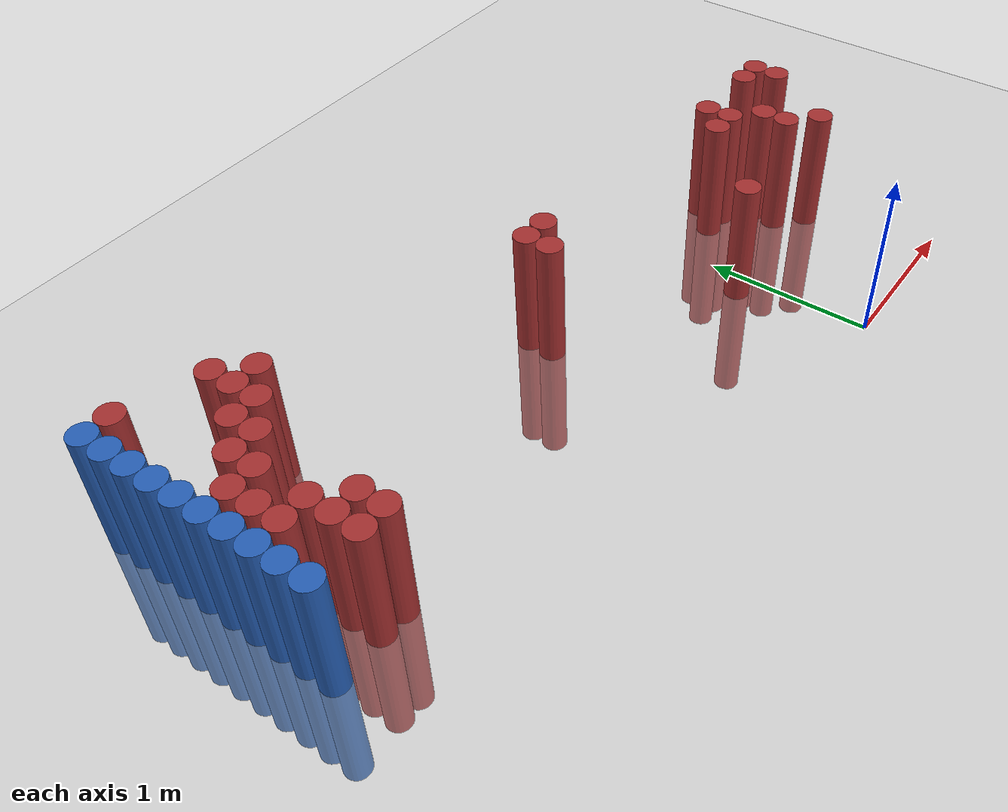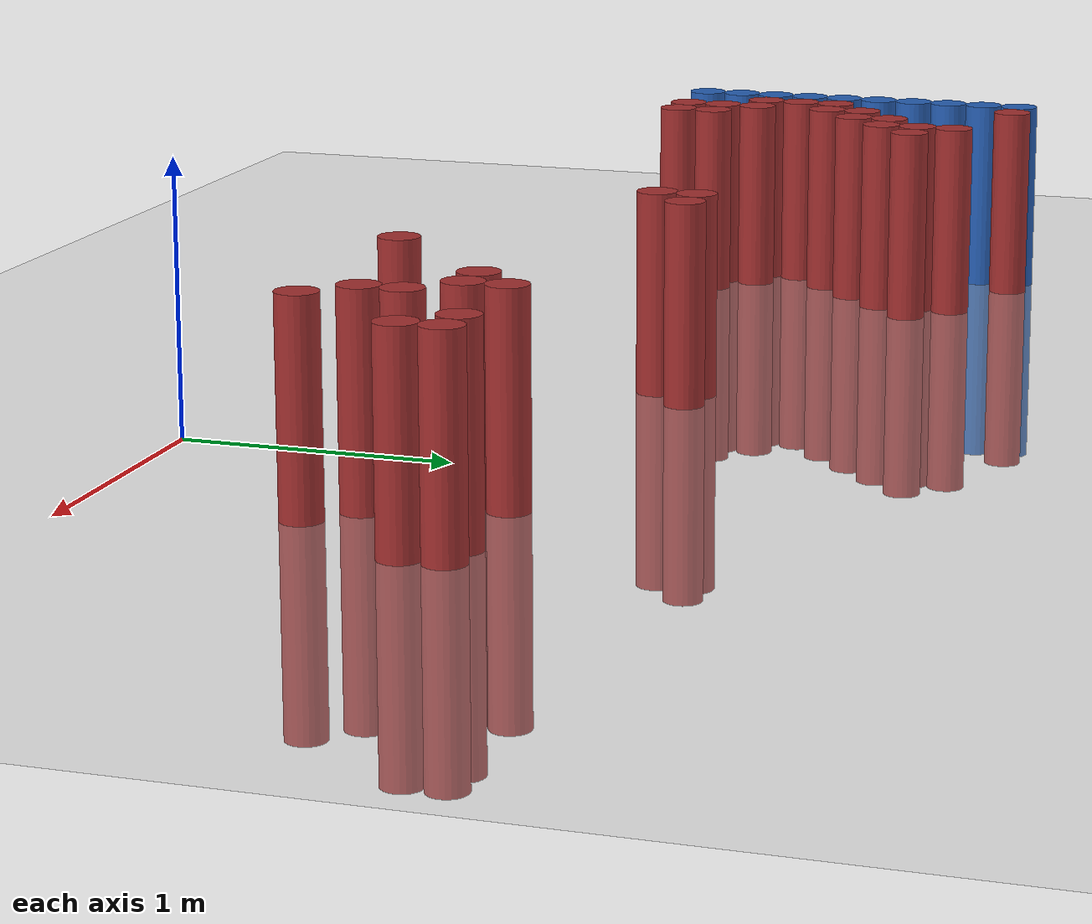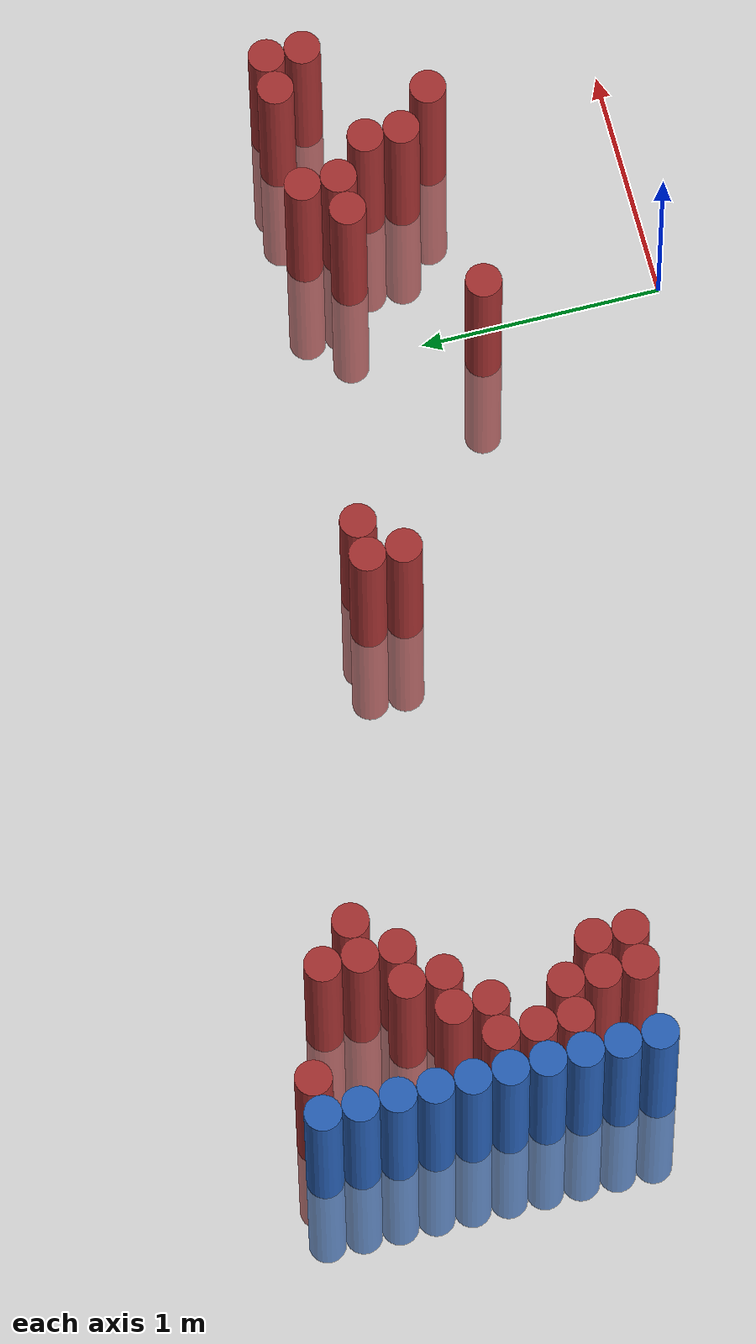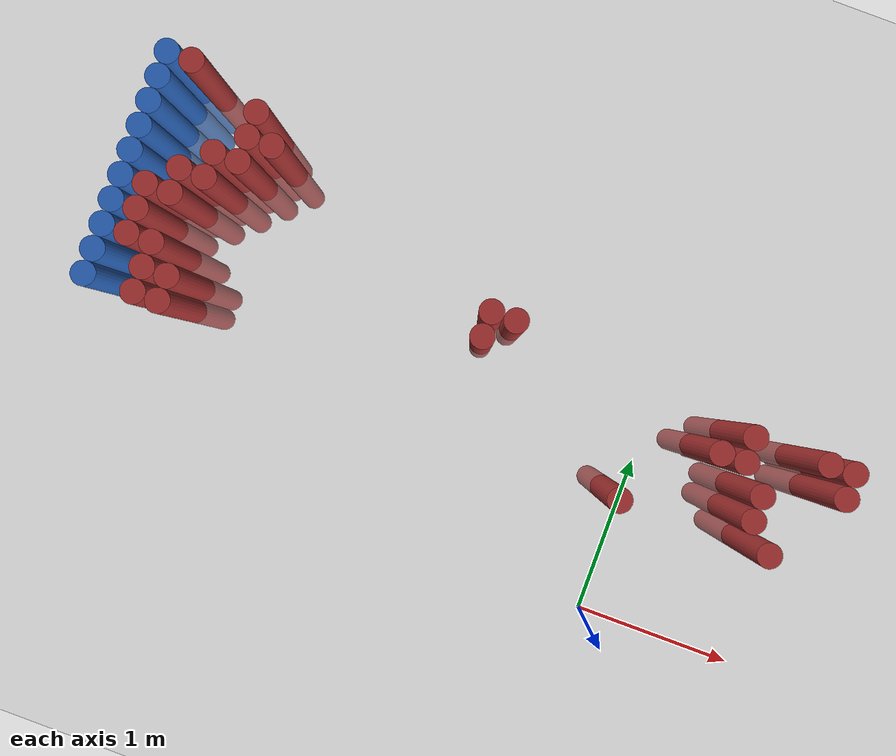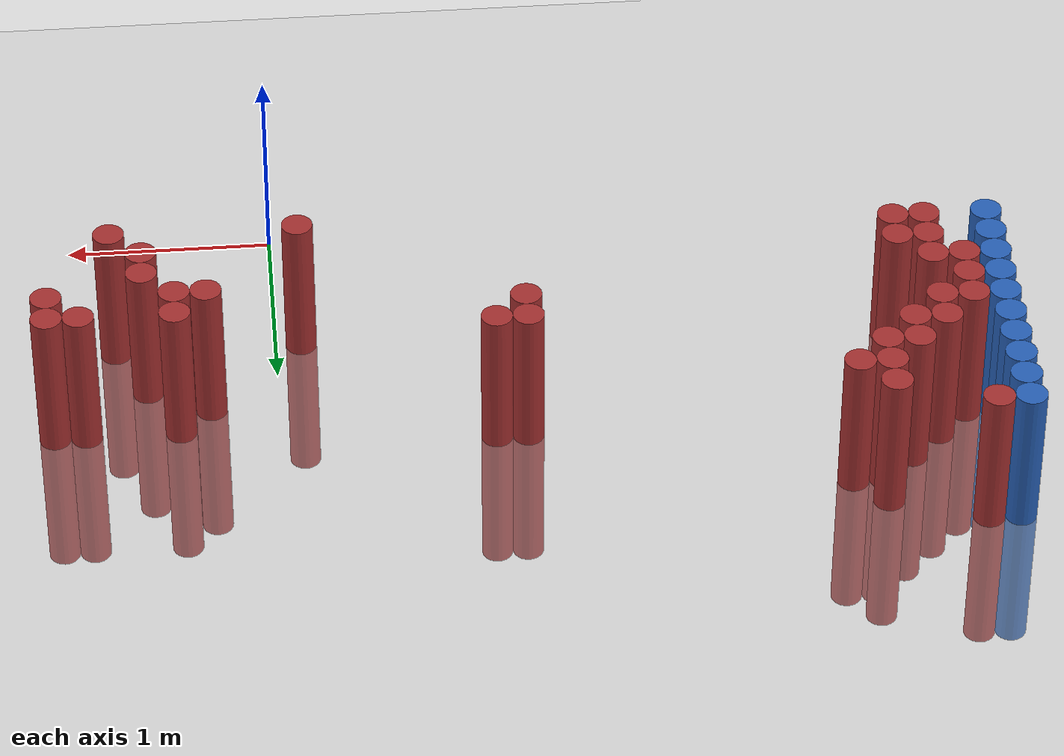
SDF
<sdf version="1.6">
 <world name="default">
  <model name="ground_plane">
   <static>1</static>
   <link name="link">
    <collision name="collision">
     <geometry><plane><normal>0 0 1</normal><size>100 100</size></plane></geometry>
     <surface><friction><ode><mu>100</mu><mu2>50</mu2></ode></friction></surface>
    </collision>
    <visual name="visual">
     <cast_shadows>0</cast_shadows>
     <geometry><plane><normal>0 0 1</normal><size>100 100</size></plane></geometry>
     <material>
      <script><uri>file://media/materials/scripts/gazebo.material</uri><name>Gazebo/Grey</name></script>
     </material>
    </visual>
   </link>
  </model>
  <model name="unit_cylinder_127">
   <static>1</static>
   <pose>-3.425000 0.925000 0.000000 0.000000 0.000000 0.000000</pose>
   <link name="link">
    <inertial>
     <mass>1</mass>
     <inertia><ixx>0.145833</ixx><ixy>0</ixy><ixz>0</ixz><iyy>0.145833</iyy><iyz>0</iyz><izz>0.125</izz></inertia>
    </inertial>
    <collision name="collision">
     <geometry><cylinder><radius>0.075000</radius><length>1.5</length></cylinder></geometry>
    </collision>
    <visual name="visual">
     <geometry><cylinder><radius>0.075000</radius><length>1.5</length></cylinder></geometry>
     <material>
      <ambient>0.152000 0.379000 0.720000 1</ambient>
      <diffuse>0.152000 0.379000 0.720000 1</diffuse>
     </material>
     <material>
      <script><name>Gazebo/Grey</name><uri>file://media/materials/scripts/gazebo.material</uri></script>
     </material>
    </visual>
   </link>
  </model>
  <model name="unit_cylinder_129">
   <static>1</static>
   <pose>-3.425000 1.075000 0.000000 0.000000 0.000000 0.000000</pose>
   <link name="link">
    <inertial>
     <mass>1</mass>
     <inertia><ixx>0.145833</ixx><ixy>0</ixy><ixz>0</ixz><iyy>0.145833</iyy><iyz>0</iyz><izz>0.125</izz></inertia>
    </inertial>
    <collision name="collision">
     <geometry><cylinder><radius>0.075000</radius><length>1.5</length></cylinder></geometry>
    </collision>
    <visual name="visual">
     <geometry><cylinder><radius>0.075000</radius><length>1.5</length></cylinder></geometry>
     <material>
      <ambient>0.152000 0.379000 0.720000 1</ambient>
      <diffuse>0.152000 0.379000 0.720000 1</diffuse>
     </material>
     <material>
      <script><name>Gazebo/Grey</name><uri>file://media/materials/scripts/gazebo.material</uri></script>
     </material>
    </visual>
   </link>
  </model>
  <model name="unit_cylinder_131">
   <static>1</static>
   <pose>-3.425000 1.225000 0.000000 0.000000 0.000000 0.000000</pose>
   <link name="link">
    <inertial>
     <mass>1</mass>
     <inertia><ixx>0.145833</ixx><ixy>0</ixy><ixz>0</ixz><iyy>0.145833</iyy><iyz>0</iyz><izz>0.125</izz></inertia>
    </inertial>
    <collision name="collision">
     <geometry><cylinder><radius>0.075000</radius><length>1.5</length></cylinder></geometry>
    </collision>
    <visual name="visual">
     <geometry><cylinder><radius>0.075000</radius><length>1.5</length></cylinder></geometry>
     <material>
      <ambient>0.152000 0.379000 0.720000 1</ambient>
      <diffuse>0.152000 0.379000 0.720000 1</diffuse>
     </material>
     <material>
      <script><name>Gazebo/Grey</name><uri>file://media/materials/scripts/gazebo.material</uri></script>
     </material>
    </visual>
   </link>
  </model>
  <model name="unit_cylinder_133">
   <static>1</static>
   <pose>-3.425000 1.375000 0.000000 0.000000 0.000000 0.000000</pose>
   <link name="link">
    <inertial>
     <mass>1</mass>
     <inertia><ixx>0.145833</ixx><ixy>0</ixy><ixz>0</ixz><iyy>0.145833</iyy><iyz>0</iyz><izz>0.125</izz></inertia>
    </inertial>
    <collision name="collision">
     <geometry><cylinder><radius>0.075000</radius><length>1.5</length></cylinder></geometry>
    </collision>
    <visual name="visual">
     <geometry><cylinder><radius>0.075000</radius><length>1.5</length></cylinder></geometry>
     <material>
      <ambient>0.152000 0.379000 0.720000 1</ambient>
      <diffuse>0.152000 0.379000 0.720000 1</diffuse>
     </material>
     <material>
      <script><name>Gazebo/Grey</name><uri>file://media/materials/scripts/gazebo.material</uri></script>
     </material>
    </visual>
   </link>
  </model>
  <model name="unit_cylinder_135">
   <static>1</static>
   <pose>-3.425000 1.525000 0.000000 0.000000 0.000000 0.000000</pose>
   <link name="link">
    <inertial>
     <mass>1</mass>
     <inertia><ixx>0.145833</ixx><ixy>0</ixy><ixz>0</ixz><iyy>0.145833</iyy><iyz>0</iyz><izz>0.125</izz></inertia>
    </inertial>
    <collision name="collision">
     <geometry><cylinder><radius>0.075000</radius><length>1.5</length></cylinder></geometry>
    </collision>
    <visual name="visual">
     <geometry><cylinder><radius>0.075000</radius><length>1.5</length></cylinder></geometry>
     <material>
      <ambient>0.152000 0.379000 0.720000 1</ambient>
      <diffuse>0.152000 0.379000 0.720000 1</diffuse>
     </material>
     <material>
      <script><name>Gazebo/Grey</name><uri>file://media/materials/scripts/gazebo.material</uri></script>
     </material>
    </visual>
   </link>
  </model>
  <model name="unit_cylinder_137">
   <static>1</static>
   <pose>-3.425000 1.675000 0.000000 0.000000 0.000000 0.000000</pose>
   <link name="link">
    <inertial>
     <mass>1</mass>
     <inertia><ixx>0.145833</ixx><ixy>0</ixy><ixz>0</ixz><iyy>0.145833</iyy><iyz>0</iyz><izz>0.125</izz></inertia>
    </inertial>
    <collision name="collision">
     <geometry><cylinder><radius>0.075000</radius><length>1.5</length></cylinder></geometry>
    </collision>
    <visual name="visual">
     <geometry><cylinder><radius>0.075000</radius><length>1.5</length></cylinder></geometry>
     <material>
      <ambient>0.152000 0.379000 0.720000 1</ambient>
      <diffuse>0.152000 0.379000 0.720000 1</diffuse>
     </material>
     <material>
      <script><name>Gazebo/Grey</name><uri>file://media/materials/scripts/gazebo.material</uri></script>
     </material>
    </visual>
   </link>
  </model>
  <model name="unit_cylinder_139">
   <static>1</static>
   <pose>-3.425000 1.825000 0.000000 0.000000 0.000000 0.000000</pose>
   <link name="link">
    <inertial>
     <mass>1</mass>
     <inertia><ixx>0.145833</ixx><ixy>0</ixy><ixz>0</ixz><iyy>0.145833</iyy><iyz>0</iyz><izz>0.125</izz></inertia>
    </inertial>
    <collision name="collision">
     <geometry><cylinder><radius>0.075000</radius><length>1.5</length></cylinder></geometry>
    </collision>
    <visual name="visual">
     <geometry><cylinder><radius>0.075000</radius><length>1.5</length></cylinder></geometry>
     <material>
      <ambient>0.152000 0.379000 0.720000 1</ambient>
      <diffuse>0.152000 0.379000 0.720000 1</diffuse>
     </material>
     <material>
      <script><name>Gazebo/Grey</name><uri>file://media/materials/scripts/gazebo.material</uri></script>
     </material>
    </visual>
   </link>
  </model>
  <model name="unit_cylinder_141">
   <static>1</static>
   <pose>-3.425000 1.975000 0.000000 0.000000 0.000000 0.000000</pose>
   <link name="link">
    <inertial>
     <mass>1</mass>
     <inertia><ixx>0.145833</ixx><ixy>0</ixy><ixz>0</ixz><iyy>0.145833</iyy><iyz>0</iyz><izz>0.125</izz></inertia>
    </inertial>
    <collision name="collision">
     <geometry><cylinder><radius>0.075000</radius><length>1.5</length></cylinder></geometry>
    </collision>
    <visual name="visual">
     <geometry><cylinder><radius>0.075000</radius><length>1.5</length></cylinder></geometry>
     <material>
      <ambient>0.152000 0.379000 0.720000 1</ambient>
      <diffuse>0.152000 0.379000 0.720000 1</diffuse>
     </material>
     <material>
      <script><name>Gazebo/Grey</name><uri>file://media/materials/scripts/gazebo.material</uri></script>
     </material>
    </visual>
   </link>
  </model>
  <model name="unit_cylinder_143">
   <static>1</static>
   <pose>-3.425000 2.125000 0.000000 0.000000 0.000000 0.000000</pose>
   <link name="link">
    <inertial>
     <mass>1</mass>
     <inertia><ixx>0.145833</ixx><ixy>0</ixy><ixz>0</ixz><iyy>0.145833</iyy><iyz>0</iyz><izz>0.125</izz></inertia>
    </inertial>
    <collision name="collision">
     <geometry><cylinder><radius>0.075000</radius><length>1.5</length></cylinder></geometry>
    </collision>
    <visual name="visual">
     <geometry><cylinder><radius>0.075000</radius><length>1.5</length></cylinder></geometry>
     <material>
      <ambient>0.152000 0.379000 0.720000 1</ambient>
      <diffuse>0.152000 0.379000 0.720000 1</diffuse>
     </material>
     <material>
      <script><name>Gazebo/Grey</name><uri>file://media/materials/scripts/gazebo.material</uri></script>
     </material>
    </visual>
   </link>
  </model>
  <model name="unit_cylinder_145">
   <static>1</static>
   <pose>-3.425000 2.275000 0.000000 0.000000 0.000000 0.000000</pose>
   <link name="link">
    <inertial>
     <mass>1</mass>
     <inertia><ixx>0.145833</ixx><ixy>0</ixy><ixz>0</ixz><iyy>0.145833</iyy><iyz>0</iyz><izz>0.125</izz></inertia>
    </inertial>
    <collision name="collision">
     <geometry><cylinder><radius>0.075000</radius><length>1.5</length></cylinder></geometry>
    </collision>
    <visual name="visual">
     <geometry><cylinder><radius>0.075000</radius><length>1.5</length></cylinder></geometry>
     <material>
      <ambient>0.152000 0.379000 0.720000 1</ambient>
      <diffuse>0.152000 0.379000 0.720000 1</diffuse>
     </material>
     <material>
      <script><name>Gazebo/Grey</name><uri>file://media/materials/scripts/gazebo.material</uri></script>
     </material>
    </visual>
   </link>
  </model>
  <model name="unit_cylinder_227">
   <static>1</static>
   <pose>-3.425000 0.925000 0.000000 0.000000 0.000000 0.000000</pose>
   <link name="link">
    <inertial>
     <mass>1</mass>
     <inertia><ixx>0.145833</ixx><ixy>0</ixy><ixz>0</ixz><iyy>0.145833</iyy><iyz>0</iyz><izz>0.125</izz></inertia>
    </inertial>
    <collision name="collision">
     <geometry><cylinder><radius>0.075000</radius><length>1.5</length></cylinder></geometry>
    </collision>
    <visual name="visual">
     <geometry><cylinder><radius>0.075000</radius><length>1.5</length></cylinder></geometry>
     <material>
      <ambient>0.152000 0.379000 0.720000 1</ambient>
      <diffuse>0.152000 0.379000 0.720000 1</diffuse>
     </material>
     <material>
      <script><name>Gazebo/Grey</name><uri>file://media/materials/scripts/gazebo.material</uri></script>
     </material>
    </visual>
   </link>
  </model>
  <model name="unit_cylinder_228">
   <static>1</static>
   <pose>-3.425000 1.075000 0.000000 0.000000 0.000000 0.000000</pose>
   <link name="link">
    <inertial>
     <mass>1</mass>
     <inertia><ixx>0.145833</ixx><ixy>0</ixy><ixz>0</ixz><iyy>0.145833</iyy><iyz>0</iyz><izz>0.125</izz></inertia>
    </inertial>
    <collision name="collision">
     <geometry><cylinder><radius>0.075000</radius><length>1.5</length></cylinder></geometry>
    </collision>
    <visual name="visual">
     <geometry><cylinder><radius>0.075000</radius><length>1.5</length></cylinder></geometry>
     <material>
      <ambient>0.152000 0.379000 0.720000 1</ambient>
      <diffuse>0.152000 0.379000 0.720000 1</diffuse>
     </material>
     <material>
      <script><name>Gazebo/Grey</name><uri>file://media/materials/scripts/gazebo.material</uri></script>
     </material>
    </visual>
   </link>
  </model>
  <model name="unit_cylinder_229">
   <static>1</static>
   <pose>-3.425000 1.225000 0.000000 0.000000 0.000000 0.000000</pose>
   <link name="link">
    <inertial>
     <mass>1</mass>
     <inertia><ixx>0.145833</ixx><ixy>0</ixy><ixz>0</ixz><iyy>0.145833</iyy><iyz>0</iyz><izz>0.125</izz></inertia>
    </inertial>
    <collision name="collision">
     <geometry><cylinder><radius>0.075000</radius><length>1.5</length></cylinder></geometry>
    </collision>
    <visual name="visual">
     <geometry><cylinder><radius>0.075000</radius><length>1.5</length></cylinder></geometry>
     <material>
      <ambient>0.152000 0.379000 0.720000 1</ambient>
      <diffuse>0.152000 0.379000 0.720000 1</diffuse>
     </material>
     <material>
      <script><name>Gazebo/Grey</name><uri>file://media/materials/scripts/gazebo.material</uri></script>
     </material>
    </visual>
   </link>
  </model>
  <model name="unit_cylinder_230">
   <static>1</static>
   <pose>-3.425000 1.375000 0.000000 0.000000 0.000000 0.000000</pose>
   <link name="link">
    <inertial>
     <mass>1</mass>
     <inertia><ixx>0.145833</ixx><ixy>0</ixy><ixz>0</ixz><iyy>0.145833</iyy><iyz>0</iyz><izz>0.125</izz></inertia>
    </inertial>
    <collision name="collision">
     <geometry><cylinder><radius>0.075000</radius><length>1.5</length></cylinder></geometry>
    </collision>
    <visual name="visual">
     <geometry><cylinder><radius>0.075000</radius><length>1.5</length></cylinder></geometry>
     <material>
      <ambient>0.152000 0.379000 0.720000 1</ambient>
      <diffuse>0.152000 0.379000 0.720000 1</diffuse>
     </material>
     <material>
      <script><name>Gazebo/Grey</name><uri>file://media/materials/scripts/gazebo.material</uri></script>
     </material>
    </visual>
   </link>
  </model>
  <model name="unit_cylinder_231">
   <static>1</static>
   <pose>-3.425000 1.525000 0.000000 0.000000 0.000000 0.000000</pose>
   <link name="link">
    <inertial>
     <mass>1</mass>
     <inertia><ixx>0.145833</ixx><ixy>0</ixy><ixz>0</ixz><iyy>0.145833</iyy><iyz>0</iyz><izz>0.125</izz></inertia>
    </inertial>
    <collision name="collision">
     <geometry><cylinder><radius>0.075000</radius><length>1.5</length></cylinder></geometry>
    </collision>
    <visual name="visual">
     <geometry><cylinder><radius>0.075000</radius><length>1.5</length></cylinder></geometry>
     <material>
      <ambient>0.152000 0.379000 0.720000 1</ambient>
      <diffuse>0.152000 0.379000 0.720000 1</diffuse>
     </material>
     <material>
      <script><name>Gazebo/Grey</name><uri>file://media/materials/scripts/gazebo.material</uri></script>
     </material>
    </visual>
   </link>
  </model>
  <model name="unit_cylinder_232">
   <static>1</static>
   <pose>-3.425000 1.675000 0.000000 0.000000 0.000000 0.000000</pose>
   <link name="link">
    <inertial>
     <mass>1</mass>
     <inertia><ixx>0.145833</ixx><ixy>0</ixy><ixz>0</ixz><iyy>0.145833</iyy><iyz>0</iyz><izz>0.125</izz></inertia>
    </inertial>
    <collision name="collision">
     <geometry><cylinder><radius>0.075000</radius><length>1.5</length></cylinder></geometry>
    </collision>
    <visual name="visual">
     <geometry><cylinder><radius>0.075000</radius><length>1.5</length></cylinder></geometry>
     <material>
      <ambient>0.152000 0.379000 0.720000 1</ambient>
      <diffuse>0.152000 0.379000 0.720000 1</diffuse>
     </material>
     <material>
      <script><name>Gazebo/Grey</name><uri>file://media/materials/scripts/gazebo.material</uri></script>
     </material>
    </visual>
   </link>
  </model>
  <model name="unit_cylinder_233">
   <static>1</static>
   <pose>-3.425000 1.825000 0.000000 0.000000 0.000000 0.000000</pose>
   <link name="link">
    <inertial>
     <mass>1</mass>
     <inertia><ixx>0.145833</ixx><ixy>0</ixy><ixz>0</ixz><iyy>0.145833</iyy><iyz>0</iyz><izz>0.125</izz></inertia>
    </inertial>
    <collision name="collision">
     <geometry><cylinder><radius>0.075000</radius><length>1.5</length></cylinder></geometry>
    </collision>
    <visual name="visual">
     <geometry><cylinder><radius>0.075000</radius><length>1.5</length></cylinder></geometry>
     <material>
      <ambient>0.152000 0.379000 0.720000 1</ambient>
      <diffuse>0.152000 0.379000 0.720000 1</diffuse>
     </material>
     <material>
      <script><name>Gazebo/Grey</name><uri>file://media/materials/scripts/gazebo.material</uri></script>
     </material>
    </visual>
   </link>
  </model>
  <model name="unit_cylinder_234">
   <static>1</static>
   <pose>-3.425000 1.975000 0.000000 0.000000 0.000000 0.000000</pose>
   <link name="link">
    <inertial>
     <mass>1</mass>
     <inertia><ixx>0.145833</ixx><ixy>0</ixy><ixz>0</ixz><iyy>0.145833</iyy><iyz>0</iyz><izz>0.125</izz></inertia>
    </inertial>
    <collision name="collision">
     <geometry><cylinder><radius>0.075000</radius><length>1.5</length></cylinder></geometry>
    </collision>
    <visual name="visual">
     <geometry><cylinder><radius>0.075000</radius><length>1.5</length></cylinder></geometry>
     <material>
      <ambient>0.152000 0.379000 0.720000 1</ambient>
      <diffuse>0.152000 0.379000 0.720000 1</diffuse>
     </material>
     <material>
      <script><name>Gazebo/Grey</name><uri>file://media/materials/scripts/gazebo.material</uri></script>
     </material>
    </visual>
   </link>
  </model>
  <model name="unit_cylinder_235">
   <static>1</static>
   <pose>-3.425000 2.125000 0.000000 0.000000 0.000000 0.000000</pose>
   <link name="link">
    <inertial>
     <mass>1</mass>
     <inertia><ixx>0.145833</ixx><ixy>0</ixy><ixz>0</ixz><iyy>0.145833</iyy><iyz>0</iyz><izz>0.125</izz></inertia>
    </inertial>
    <collision name="collision">
     <geometry><cylinder><radius>0.075000</radius><length>1.5</length></cylinder></geometry>
    </collision>
    <visual name="visual">
     <geometry><cylinder><radius>0.075000</radius><length>1.5</length></cylinder></geometry>
     <material>
      <ambient>0.152000 0.379000 0.720000 1</ambient>
      <diffuse>0.152000 0.379000 0.720000 1</diffuse>
     </material>
     <material>
      <script><name>Gazebo/Grey</name><uri>file://media/materials/scripts/gazebo.material</uri></script>
     </material>
    </visual>
   </link>
  </model>
  <model name="unit_cylinder_236">
   <static>1</static>
   <pose>-3.425000 2.275000 0.000000 0.000000 0.000000 0.000000</pose>
   <link name="link">
    <inertial>
     <mass>1</mass>
     <inertia><ixx>0.145833</ixx><ixy>0</ixy><ixz>0</ixz><iyy>0.145833</iyy><iyz>0</iyz><izz>0.125</izz></inertia>
    </inertial>
    <collision name="collision">
     <geometry><cylinder><radius>0.075000</radius><length>1.5</length></cylinder></geometry>
    </collision>
    <visual name="visual">
     <geometry><cylinder><radius>0.075000</radius><length>1.5</length></cylinder></geometry>
     <material>
      <ambient>0.152000 0.379000 0.720000 1</ambient>
      <diffuse>0.152000 0.379000 0.720000 1</diffuse>
     </material>
     <material>
      <script><name>Gazebo/Grey</name><uri>file://media/materials/scripts/gazebo.material</uri></script>
     </material>
    </visual>
   </link>
  </model>
  <model name="unit_cylinder_273">
   <static>1</static>
   <pose>-3.275000 1.225000 0.000000 0.000000 0.000000 0.000000</pose>
   <link name="link">
    <inertial>
     <mass>1</mass>
     <inertia><ixx>0.145833</ixx><ixy>0</ixy><ixz>0</ixz><iyy>0.145833</iyy><iyz>0</iyz><izz>0.125</izz></inertia>
    </inertial>
    <collision name="collision">
     <geometry><cylinder><radius>0.075000</radius><length>1.5</length></cylinder></geometry>
    </collision>
    <visual name="visual">
     <geometry><cylinder><radius>0.075000</radius><length>1.5</length></cylinder></geometry>
     <material>
      <ambient>0.648000 0.192000 0.192000 1</ambient>
      <diffuse>0.648000 0.192000 0.192000 1</diffuse>
     </material>
     <material>
      <script><name>Gazebo/Grey</name><uri>file://media/materials/scripts/gazebo.material</uri></script>
     </material>
    </visual>
   </link>
  </model>
  <model name="unit_cylinder_274">
   <static>1</static>
   <pose>-3.275000 1.375000 0.000000 0.000000 0.000000 0.000000</pose>
   <link name="link">
    <inertial>
     <mass>1</mass>
     <inertia><ixx>0.145833</ixx><ixy>0</ixy><ixz>0</ixz><iyy>0.145833</iyy><iyz>0</iyz><izz>0.125</izz></inertia>
    </inertial>
    <collision name="collision">
     <geometry><cylinder><radius>0.075000</radius><length>1.5</length></cylinder></geometry>
    </collision>
    <visual name="visual">
     <geometry><cylinder><radius>0.075000</radius><length>1.5</length></cylinder></geometry>
     <material>
      <ambient>0.648000 0.192000 0.192000 1</ambient>
      <diffuse>0.648000 0.192000 0.192000 1</diffuse>
     </material>
     <material>
      <script><name>Gazebo/Grey</name><uri>file://media/materials/scripts/gazebo.material</uri></script>
     </material>
    </visual>
   </link>
  </model>
  <model name="unit_cylinder_275">
   <static>1</static>
   <pose>-3.275000 1.525000 0.000000 0.000000 0.000000 0.000000</pose>
   <link name="link">
    <inertial>
     <mass>1</mass>
     <inertia><ixx>0.145833</ixx><ixy>0</ixy><ixz>0</ixz><iyy>0.145833</iyy><iyz>0</iyz><izz>0.125</izz></inertia>
    </inertial>
    <collision name="collision">
     <geometry><cylinder><radius>0.075000</radius><length>1.5</length></cylinder></geometry>
    </collision>
    <visual name="visual">
     <geometry><cylinder><radius>0.075000</radius><length>1.5</length></cylinder></geometry>
     <material>
      <ambient>0.648000 0.192000 0.192000 1</ambient>
      <diffuse>0.648000 0.192000 0.192000 1</diffuse>
     </material>
     <material>
      <script><name>Gazebo/Grey</name><uri>file://media/materials/scripts/gazebo.material</uri></script>
     </material>
    </visual>
   </link>
  </model>
  <model name="unit_cylinder_276">
   <static>1</static>
   <pose>-3.275000 2.275000 0.000000 0.000000 0.000000 0.000000</pose>
   <link name="link">
    <inertial>
     <mass>1</mass>
     <inertia><ixx>0.145833</ixx><ixy>0</ixy><ixz>0</ixz><iyy>0.145833</iyy><iyz>0</iyz><izz>0.125</izz></inertia>
    </inertial>
    <collision name="collision">
     <geometry><cylinder><radius>0.075000</radius><length>1.5</length></cylinder></geometry>
    </collision>
    <visual name="visual">
     <geometry><cylinder><radius>0.075000</radius><length>1.5</length></cylinder></geometry>
     <material>
      <ambient>0.648000 0.192000 0.192000 1</ambient>
      <diffuse>0.648000 0.192000 0.192000 1</diffuse>
     </material>
     <material>
      <script><name>Gazebo/Grey</name><uri>file://media/materials/scripts/gazebo.material</uri></script>
     </material>
    </visual>
   </link>
  </model>
  <model name="unit_cylinder_289">
   <static>1</static>
   <pose>-3.125000 0.925000 0.000000 0.000000 0.000000 0.000000</pose>
   <link name="link">
    <inertial>
     <mass>1</mass>
     <inertia><ixx>0.145833</ixx><ixy>0</ixy><ixz>0</ixz><iyy>0.145833</iyy><iyz>0</iyz><izz>0.125</izz></inertia>
    </inertial>
    <collision name="collision">
     <geometry><cylinder><radius>0.075000</radius><length>1.5</length></cylinder></geometry>
    </collision>
    <visual name="visual">
     <geometry><cylinder><radius>0.075000</radius><length>1.5</length></cylinder></geometry>
     <material>
      <ambient>0.648000 0.192000 0.192000 1</ambient>
      <diffuse>0.648000 0.192000 0.192000 1</diffuse>
     </material>
     <material>
      <script><name>Gazebo/Grey</name><uri>file://media/materials/scripts/gazebo.material</uri></script>
     </material>
    </visual>
   </link>
  </model>
  <model name="unit_cylinder_290">
   <static>1</static>
   <pose>-3.125000 1.075000 0.000000 0.000000 0.000000 0.000000</pose>
   <link name="link">
    <inertial>
     <mass>1</mass>
     <inertia><ixx>0.145833</ixx><ixy>0</ixy><ixz>0</ixz><iyy>0.145833</iyy><iyz>0</iyz><izz>0.125</izz></inertia>
    </inertial>
    <collision name="collision">
     <geometry><cylinder><radius>0.075000</radius><length>1.5</length></cylinder></geometry>
    </collision>
    <visual name="visual">
     <geometry><cylinder><radius>0.075000</radius><length>1.5</length></cylinder></geometry>
     <material>
      <ambient>0.648000 0.192000 0.192000 1</ambient>
      <diffuse>0.648000 0.192000 0.192000 1</diffuse>
     </material>
     <material>
      <script><name>Gazebo/Grey</name><uri>file://media/materials/scripts/gazebo.material</uri></script>
     </material>
    </visual>
   </link>
  </model>
  <model name="unit_cylinder_291">
   <static>1</static>
   <pose>-3.125000 1.225000 0.000000 0.000000 0.000000 0.000000</pose>
   <link name="link">
    <inertial>
     <mass>1</mass>
     <inertia><ixx>0.145833</ixx><ixy>0</ixy><ixz>0</ixz><iyy>0.145833</iyy><iyz>0</iyz><izz>0.125</izz></inertia>
    </inertial>
    <collision name="collision">
     <geometry><cylinder><radius>0.075000</radius><length>1.5</length></cylinder></geometry>
    </collision>
    <visual name="visual">
     <geometry><cylinder><radius>0.075000</radius><length>1.5</length></cylinder></geometry>
     <material>
      <ambient>0.648000 0.192000 0.192000 1</ambient>
      <diffuse>0.648000 0.192000 0.192000 1</diffuse>
     </material>
     <material>
      <script><name>Gazebo/Grey</name><uri>file://media/materials/scripts/gazebo.material</uri></script>
     </material>
    </visual>
   </link>
  </model>
  <model name="unit_cylinder_292">
   <static>1</static>
   <pose>-3.125000 1.525000 0.000000 0.000000 0.000000 0.000000</pose>
   <link name="link">
    <inertial>
     <mass>1</mass>
     <inertia><ixx>0.145833</ixx><ixy>0</ixy><ixz>0</ixz><iyy>0.145833</iyy><iyz>0</iyz><izz>0.125</izz></inertia>
    </inertial>
    <collision name="collision">
     <geometry><cylinder><radius>0.075000</radius><length>1.5</length></cylinder></geometry>
    </collision>
    <visual name="visual">
     <geometry><cylinder><radius>0.075000</radius><length>1.5</length></cylinder></geometry>
     <material>
      <ambient>0.648000 0.192000 0.192000 1</ambient>
      <diffuse>0.648000 0.192000 0.192000 1</diffuse>
     </material>
     <material>
      <script><name>Gazebo/Grey</name><uri>file://media/materials/scripts/gazebo.material</uri></script>
     </material>
    </visual>
   </link>
  </model>
  <model name="unit_cylinder_293">
   <static>1</static>
   <pose>-3.125000 1.675000 0.000000 0.000000 0.000000 0.000000</pose>
   <link name="link">
    <inertial>
     <mass>1</mass>
     <inertia><ixx>0.145833</ixx><ixy>0</ixy><ixz>0</ixz><iyy>0.145833</iyy><iyz>0</iyz><izz>0.125</izz></inertia>
    </inertial>
    <collision name="collision">
     <geometry><cylinder><radius>0.075000</radius><length>1.5</length></cylinder></geometry>
    </collision>
    <visual name="visual">
     <geometry><cylinder><radius>0.075000</radius><length>1.5</length></cylinder></geometry>
     <material>
      <ambient>0.648000 0.192000 0.192000 1</ambient>
      <diffuse>0.648000 0.192000 0.192000 1</diffuse>
     </material>
     <material>
      <script><name>Gazebo/Grey</name><uri>file://media/materials/scripts/gazebo.material</uri></script>
     </material>
    </visual>
   </link>
  </model>
  <model name="unit_cylinder_295">
   <static>1</static>
   <pose>-2.975000 0.925000 0.000000 0.000000 0.000000 0.000000</pose>
   <link name="link">
    <inertial>
     <mass>1</mass>
     <inertia><ixx>0.145833</ixx><ixy>0</ixy><ixz>0</ixz><iyy>0.145833</iyy><iyz>0</iyz><izz>0.125</izz></inertia>
    </inertial>
    <collision name="collision">
     <geometry><cylinder><radius>0.075000</radius><length>1.5</length></cylinder></geometry>
    </collision>
    <visual name="visual">
     <geometry><cylinder><radius>0.075000</radius><length>1.5</length></cylinder></geometry>
     <material>
      <ambient>0.648000 0.192000 0.192000 1</ambient>
      <diffuse>0.648000 0.192000 0.192000 1</diffuse>
     </material>
     <material>
      <script><name>Gazebo/Grey</name><uri>file://media/materials/scripts/gazebo.material</uri></script>
     </material>
    </visual>
   </link>
  </model>
  <model name="unit_cylinder_296">
   <static>1</static>
   <pose>-2.975000 1.075000 0.000000 0.000000 0.000000 0.000000</pose>
   <link name="link">
    <inertial>
     <mass>1</mass>
     <inertia><ixx>0.145833</ixx><ixy>0</ixy><ixz>0</ixz><iyy>0.145833</iyy><iyz>0</iyz><izz>0.125</izz></inertia>
    </inertial>
    <collision name="collision">
     <geometry><cylinder><radius>0.075000</radius><length>1.5</length></cylinder></geometry>
    </collision>
    <visual name="visual">
     <geometry><cylinder><radius>0.075000</radius><length>1.5</length></cylinder></geometry>
     <material>
      <ambient>0.648000 0.192000 0.192000 1</ambient>
      <diffuse>0.648000 0.192000 0.192000 1</diffuse>
     </material>
     <material>
      <script><name>Gazebo/Grey</name><uri>file://media/materials/scripts/gazebo.material</uri></script>
     </material>
    </visual>
   </link>
  </model>
  <model name="unit_cylinder_297">
   <static>1</static>
   <pose>-2.975000 1.675000 0.000000 0.000000 0.000000 0.000000</pose>
   <link name="link">
    <inertial>
     <mass>1</mass>
     <inertia><ixx>0.145833</ixx><ixy>0</ixy><ixz>0</ixz><iyy>0.145833</iyy><iyz>0</iyz><izz>0.125</izz></inertia>
    </inertial>
    <collision name="collision">
     <geometry><cylinder><radius>0.075000</radius><length>1.5</length></cylinder></geometry>
    </collision>
    <visual name="visual">
     <geometry><cylinder><radius>0.075000</radius><length>1.5</length></cylinder></geometry>
     <material>
      <ambient>0.648000 0.192000 0.192000 1</ambient>
      <diffuse>0.648000 0.192000 0.192000 1</diffuse>
     </material>
     <material>
      <script><name>Gazebo/Grey</name><uri>file://media/materials/scripts/gazebo.material</uri></script>
     </material>
    </visual>
   </link>
  </model>
  <model name="unit_cylinder_298">
   <static>1</static>
   <pose>-2.975000 1.825000 0.000000 0.000000 0.000000 0.000000</pose>
   <link name="link">
    <inertial>
     <mass>1</mass>
     <inertia><ixx>0.145833</ixx><ixy>0</ixy><ixz>0</ixz><iyy>0.145833</iyy><iyz>0</iyz><izz>0.125</izz></inertia>
    </inertial>
    <collision name="collision">
     <geometry><cylinder><radius>0.075000</radius><length>1.5</length></cylinder></geometry>
    </collision>
    <visual name="visual">
     <geometry><cylinder><radius>0.075000</radius><length>1.5</length></cylinder></geometry>
     <material>
      <ambient>0.648000 0.192000 0.192000 1</ambient>
      <diffuse>0.648000 0.192000 0.192000 1</diffuse>
     </material>
     <material>
      <script><name>Gazebo/Grey</name><uri>file://media/materials/scripts/gazebo.material</uri></script>
     </material>
    </visual>
   </link>
  </model>
  <model name="unit_cylinder_303">
   <static>1</static>
   <pose>-2.825000 1.825000 0.000000 0.000000 0.000000 0.000000</pose>
   <link name="link">
    <inertial>
     <mass>1</mass>
     <inertia><ixx>0.145833</ixx><ixy>0</ixy><ixz>0</ixz><iyy>0.145833</iyy><iyz>0</iyz><izz>0.125</izz></inertia>
    </inertial>
    <collision name="collision">
     <geometry><cylinder><radius>0.075000</radius><length>1.5</length></cylinder></geometry>
    </collision>
    <visual name="visual">
     <geometry><cylinder><radius>0.075000</radius><length>1.5</length></cylinder></geometry>
     <material>
      <ambient>0.648000 0.192000 0.192000 1</ambient>
      <diffuse>0.648000 0.192000 0.192000 1</diffuse>
     </material>
     <material>
      <script><name>Gazebo/Grey</name><uri>file://media/materials/scripts/gazebo.material</uri></script>
     </material>
    </visual>
   </link>
  </model>
  <model name="unit_cylinder_304">
   <static>1</static>
   <pose>-2.825000 1.975000 0.000000 0.000000 0.000000 0.000000</pose>
   <link name="link">
    <inertial>
     <mass>1</mass>
     <inertia><ixx>0.145833</ixx><ixy>0</ixy><ixz>0</ixz><iyy>0.145833</iyy><iyz>0</iyz><izz>0.125</izz></inertia>
    </inertial>
    <collision name="collision">
     <geometry><cylinder><radius>0.075000</radius><length>1.5</length></cylinder></geometry>
    </collision>
    <visual name="visual">
     <geometry><cylinder><radius>0.075000</radius><length>1.5</length></cylinder></geometry>
     <material>
      <ambient>0.648000 0.192000 0.192000 1</ambient>
      <diffuse>0.648000 0.192000 0.192000 1</diffuse>
     </material>
     <material>
      <script><name>Gazebo/Grey</name><uri>file://media/materials/scripts/gazebo.material</uri></script>
     </material>
    </visual>
   </link>
  </model>
  <model name="unit_cylinder_305">
   <static>1</static>
   <pose>-2.825000 2.125000 0.000000 0.000000 0.000000 0.000000</pose>
   <link name="link">
    <inertial>
     <mass>1</mass>
     <inertia><ixx>0.145833</ixx><ixy>0</ixy><ixz>0</ixz><iyy>0.145833</iyy><iyz>0</iyz><izz>0.125</izz></inertia>
    </inertial>
    <collision name="collision">
     <geometry><cylinder><radius>0.075000</radius><length>1.5</length></cylinder></geometry>
    </collision>
    <visual name="visual">
     <geometry><cylinder><radius>0.075000</radius><length>1.5</length></cylinder></geometry>
     <material>
      <ambient>0.648000 0.192000 0.192000 1</ambient>
      <diffuse>0.648000 0.192000 0.192000 1</diffuse>
     </material>
     <material>
      <script><name>Gazebo/Grey</name><uri>file://media/materials/scripts/gazebo.material</uri></script>
     </material>
    </visual>
   </link>
  </model>
  <model name="unit_cylinder_314">
   <static>1</static>
   <pose>-2.675000 1.975000 0.000000 0.000000 0.000000 0.000000</pose>
   <link name="link">
    <inertial>
     <mass>1</mass>
     <inertia><ixx>0.145833</ixx><ixy>0</ixy><ixz>0</ixz><iyy>0.145833</iyy><iyz>0</iyz><izz>0.125</izz></inertia>
    </inertial>
    <collision name="collision">
     <geometry><cylinder><radius>0.075000</radius><length>1.5</length></cylinder></geometry>
    </collision>
    <visual name="visual">
     <geometry><cylinder><radius>0.075000</radius><length>1.5</length></cylinder></geometry>
     <material>
      <ambient>0.648000 0.192000 0.192000 1</ambient>
      <diffuse>0.648000 0.192000 0.192000 1</diffuse>
     </material>
     <material>
      <script><name>Gazebo/Grey</name><uri>file://media/materials/scripts/gazebo.material</uri></script>
     </material>
    </visual>
   </link>
  </model>
  <model name="unit_cylinder_337">
   <static>1</static>
   <pose>-1.175000 1.375000 0.000000 0.000000 0.000000 0.000000</pose>
   <link name="link">
    <inertial>
     <mass>1</mass>
     <inertia><ixx>0.145833</ixx><ixy>0</ixy><ixz>0</ixz><iyy>0.145833</iyy><iyz>0</iyz><izz>0.125</izz></inertia>
    </inertial>
    <collision name="collision">
     <geometry><cylinder><radius>0.075000</radius><length>1.5</length></cylinder></geometry>
    </collision>
    <visual name="visual">
     <geometry><cylinder><radius>0.075000</radius><length>1.5</length></cylinder></geometry>
     <material>
      <ambient>0.648000 0.192000 0.192000 1</ambient>
      <diffuse>0.648000 0.192000 0.192000 1</diffuse>
     </material>
     <material>
      <script><name>Gazebo/Grey</name><uri>file://media/materials/scripts/gazebo.material</uri></script>
     </material>
    </visual>
   </link>
  </model>
  <model name="unit_cylinder_338">
   <static>1</static>
   <pose>-1.175000 1.525000 0.000000 0.000000 0.000000 0.000000</pose>
   <link name="link">
    <inertial>
     <mass>1</mass>
     <inertia><ixx>0.145833</ixx><ixy>0</ixy><ixz>0</ixz><iyy>0.145833</iyy><iyz>0</iyz><izz>0.125</izz></inertia>
    </inertial>
    <collision name="collision">
     <geometry><cylinder><radius>0.075000</radius><length>1.5</length></cylinder></geometry>
    </collision>
    <visual name="visual">
     <geometry><cylinder><radius>0.075000</radius><length>1.5</length></cylinder></geometry>
     <material>
      <ambient>0.648000 0.192000 0.192000 1</ambient>
      <diffuse>0.648000 0.192000 0.192000 1</diffuse>
     </material>
     <material>
      <script><name>Gazebo/Grey</name><uri>file://media/materials/scripts/gazebo.material</uri></script>
     </material>
    </visual>
   </link>
  </model>
  <model name="unit_cylinder_339">
   <static>1</static>
   <pose>-1.025000 1.525000 0.000000 0.000000 0.000000 0.000000</pose>
   <link name="link">
    <inertial>
     <mass>1</mass>
     <inertia><ixx>0.145833</ixx><ixy>0</ixy><ixz>0</ixz><iyy>0.145833</iyy><iyz>0</iyz><izz>0.125</izz></inertia>
    </inertial>
    <collision name="collision">
     <geometry><cylinder><radius>0.075000</radius><length>1.5</length></cylinder></geometry>
    </collision>
    <visual name="visual">
     <geometry><cylinder><radius>0.075000</radius><length>1.5</length></cylinder></geometry>
     <material>
      <ambient>0.648000 0.192000 0.192000 1</ambient>
      <diffuse>0.648000 0.192000 0.192000 1</diffuse>
     </material>
     <material>
      <script><name>Gazebo/Grey</name><uri>file://media/materials/scripts/gazebo.material</uri></script>
     </material>
    </visual>
   </link>
  </model>
  <model name="unit_cylinder_349">
   <static>1</static>
   <pose>-0.125000 0.775000 0.000000 0.000000 0.000000 0.000000</pose>
   <link name="link">
    <inertial>
     <mass>1</mass>
     <inertia><ixx>0.145833</ixx><ixy>0</ixy><ixz>0</ixz><iyy>0.145833</iyy><iyz>0</iyz><izz>0.125</izz></inertia>
    </inertial>
    <collision name="collision">
     <geometry><cylinder><radius>0.075000</radius><length>1.5</length></cylinder></geometry>
    </collision>
    <visual name="visual">
     <geometry><cylinder><radius>0.075000</radius><length>1.5</length></cylinder></geometry>
     <material>
      <ambient>0.648000 0.192000 0.192000 1</ambient>
      <diffuse>0.648000 0.192000 0.192000 1</diffuse>
     </material>
     <material>
      <script><name>Gazebo/Grey</name><uri>file://media/materials/scripts/gazebo.material</uri></script>
     </material>
    </visual>
   </link>
  </model>
  <model name="unit_cylinder_362">
   <static>1</static>
   <pose>0.325000 1.225000 0.000000 0.000000 0.000000 0.000000</pose>
   <link name="link">
    <inertial>
     <mass>1</mass>
     <inertia><ixx>0.145833</ixx><ixy>0</ixy><ixz>0</ixz><iyy>0.145833</iyy><iyz>0</iyz><izz>0.125</izz></inertia>
    </inertial>
    <collision name="collision">
     <geometry><cylinder><radius>0.075000</radius><length>1.5</length></cylinder></geometry>
    </collision>
    <visual name="visual">
     <geometry><cylinder><radius>0.075000</radius><length>1.5</length></cylinder></geometry>
     <material>
      <ambient>0.648000 0.192000 0.192000 1</ambient>
      <diffuse>0.648000 0.192000 0.192000 1</diffuse>
     </material>
     <material>
      <script><name>Gazebo/Grey</name><uri>file://media/materials/scripts/gazebo.material</uri></script>
     </material>
    </visual>
   </link>
  </model>
  <model name="unit_cylinder_364">
   <static>1</static>
   <pose>0.475000 1.225000 0.000000 0.000000 0.000000 0.000000</pose>
   <link name="link">
    <inertial>
     <mass>1</mass>
     <inertia><ixx>0.145833</ixx><ixy>0</ixy><ixz>0</ixz><iyy>0.145833</iyy><iyz>0</iyz><izz>0.125</izz></inertia>
    </inertial>
    <collision name="collision">
     <geometry><cylinder><radius>0.075000</radius><length>1.5</length></cylinder></geometry>
    </collision>
    <visual name="visual">
     <geometry><cylinder><radius>0.075000</radius><length>1.5</length></cylinder></geometry>
     <material>
      <ambient>0.648000 0.192000 0.192000 1</ambient>
      <diffuse>0.648000 0.192000 0.192000 1</diffuse>
     </material>
     <material>
      <script><name>Gazebo/Grey</name><uri>file://media/materials/scripts/gazebo.material</uri></script>
     </material>
    </visual>
   </link>
  </model>
  <model name="unit_cylinder_365">
   <static>1</static>
   <pose>0.475000 1.375000 0.000000 0.000000 0.000000 0.000000</pose>
   <link name="link">
    <inertial>
     <mass>1</mass>
     <inertia><ixx>0.145833</ixx><ixy>0</ixy><ixz>0</ixz><iyy>0.145833</iyy><iyz>0</iyz><izz>0.125</izz></inertia>
    </inertial>
    <collision name="collision">
     <geometry><cylinder><radius>0.075000</radius><length>1.5</length></cylinder></geometry>
    </collision>
    <visual name="visual">
     <geometry><cylinder><radius>0.075000</radius><length>1.5</length></cylinder></geometry>
     <material>
      <ambient>0.648000 0.192000 0.192000 1</ambient>
      <diffuse>0.648000 0.192000 0.192000 1</diffuse>
     </material>
     <material>
      <script><name>Gazebo/Grey</name><uri>file://media/materials/scripts/gazebo.material</uri></script>
     </material>
    </visual>
   </link>
  </model>
  <model name="unit_cylinder_371">
   <static>1</static>
   <pose>0.625000 0.925000 0.000000 0.000000 0.000000 0.000000</pose>
   <link name="link">
    <inertial>
     <mass>1</mass>
     <inertia><ixx>0.145833</ixx><ixy>0</ixy><ixz>0</ixz><iyy>0.145833</iyy><iyz>0</iyz><izz>0.125</izz></inertia>
    </inertial>
    <collision name="collision">
     <geometry><cylinder><radius>0.075000</radius><length>1.5</length></cylinder></geometry>
    </collision>
    <visual name="visual">
     <geometry><cylinder><radius>0.075000</radius><length>1.5</length></cylinder></geometry>
     <material>
      <ambient>0.648000 0.192000 0.192000 1</ambient>
      <diffuse>0.648000 0.192000 0.192000 1</diffuse>
     </material>
     <material>
      <script><name>Gazebo/Grey</name><uri>file://media/materials/scripts/gazebo.material</uri></script>
     </material>
    </visual>
   </link>
  </model>
  <model name="unit_cylinder_372">
   <static>1</static>
   <pose>0.625000 1.075000 0.000000 0.000000 0.000000 0.000000</pose>
   <link name="link">
    <inertial>
     <mass>1</mass>
     <inertia><ixx>0.145833</ixx><ixy>0</ixy><ixz>0</ixz><iyy>0.145833</iyy><iyz>0</iyz><izz>0.125</izz></inertia>
    </inertial>
    <collision name="collision">
     <geometry><cylinder><radius>0.075000</radius><length>1.5</length></cylinder></geometry>
    </collision>
    <visual name="visual">
     <geometry><cylinder><radius>0.075000</radius><length>1.5</length></cylinder></geometry>
     <material>
      <ambient>0.648000 0.192000 0.192000 1</ambient>
      <diffuse>0.648000 0.192000 0.192000 1</diffuse>
     </material>
     <material>
      <script><name>Gazebo/Grey</name><uri>file://media/materials/scripts/gazebo.material</uri></script>
     </material>
    </visual>
   </link>
  </model>
  <model name="unit_cylinder_384">
   <static>1</static>
   <pose>0.775000 0.775000 0.000000 0.000000 0.000000 0.000000</pose>
   <link name="link">
    <inertial>
     <mass>1</mass>
     <inertia><ixx>0.145833</ixx><ixy>0</ixy><ixz>0</ixz><iyy>0.145833</iyy><iyz>0</iyz><izz>0.125</izz></inertia>
    </inertial>
    <collision name="collision">
     <geometry><cylinder><radius>0.075000</radius><length>1.5</length></cylinder></geometry>
    </collision>
    <visual name="visual">
     <geometry><cylinder><radius>0.075000</radius><length>1.5</length></cylinder></geometry>
     <material>
      <ambient>0.648000 0.192000 0.192000 1</ambient>
      <diffuse>0.648000 0.192000 0.192000 1</diffuse>
     </material>
     <material>
      <script><name>Gazebo/Grey</name><uri>file://media/materials/scripts/gazebo.material</uri></script>
     </material>
    </visual>
   </link>
  </model>
  <model name="unit_cylinder_392">
   <static>1</static>
   <pose>0.925000 1.375000 0.000000 0.000000 0.000000 0.000000</pose>
   <link name="link">
    <inertial>
     <mass>1</mass>
     <inertia><ixx>0.145833</ixx><ixy>0</ixy><ixz>0</ixz><iyy>0.145833</iyy><iyz>0</iyz><izz>0.125</izz></inertia>
    </inertial>
    <collision name="collision">
     <geometry><cylinder><radius>0.075000</radius><length>1.5</length></cylinder></geometry>
    </collision>
    <visual name="visual">
     <geometry><cylinder><radius>0.075000</radius><length>1.5</length></cylinder></geometry>
     <material>
      <ambient>0.648000 0.192000 0.192000 1</ambient>
      <diffuse>0.648000 0.192000 0.192000 1</diffuse>
     </material>
     <material>
      <script><name>Gazebo/Grey</name><uri>file://media/materials/scripts/gazebo.material</uri></script>
     </material>
    </visual>
   </link>
  </model>
  <model name="unit_cylinder_397">
   <static>1</static>
   <pose>1.075000 1.225000 0.000000 0.000000 0.000000 0.000000</pose>
   <link name="link">
    <inertial>
     <mass>1</mass>
     <inertia><ixx>0.145833</ixx><ixy>0</ixy><ixz>0</ixz><iyy>0.145833</iyy><iyz>0</iyz><izz>0.125</izz></inertia>
    </inertial>
    <collision name="collision">
     <geometry><cylinder><radius>0.075000</radius><length>1.5</length></cylinder></geometry>
    </collision>
    <visual name="visual">
     <geometry><cylinder><radius>0.075000</radius><length>1.5</length></cylinder></geometry>
     <material>
      <ambient>0.648000 0.192000 0.192000 1</ambient>
      <diffuse>0.648000 0.192000 0.192000 1</diffuse>
     </material>
     <material>
      <script><name>Gazebo/Grey</name><uri>file://media/materials/scripts/gazebo.material</uri></script>
     </material>
    </visual>
   </link>
  </model>
  <model name="unit_cylinder_398">
   <static>1</static>
   <pose>1.075000 1.375000 0.000000 0.000000 0.000000 0.000000</pose>
   <link name="link">
    <inertial>
     <mass>1</mass>
     <inertia><ixx>0.145833</ixx><ixy>0</ixy><ixz>0</ixz><iyy>0.145833</iyy><iyz>0</iyz><izz>0.125</izz></inertia>
    </inertial>
    <collision name="collision">
     <geometry><cylinder><radius>0.075000</radius><length>1.5</length></cylinder></geometry>
    </collision>
    <visual name="visual">
     <geometry><cylinder><radius>0.075000</radius><length>1.5</length></cylinder></geometry>
     <material>
      <ambient>0.648000 0.192000 0.192000 1</ambient>
      <diffuse>0.648000 0.192000 0.192000 1</diffuse>
     </material>
     <material>
      <script><name>Gazebo/Grey</name><uri>file://media/materials/scripts/gazebo.material</uri></script>
     </material>
    </visual>
   </link>
  </model>
 </world>
</sdf>
